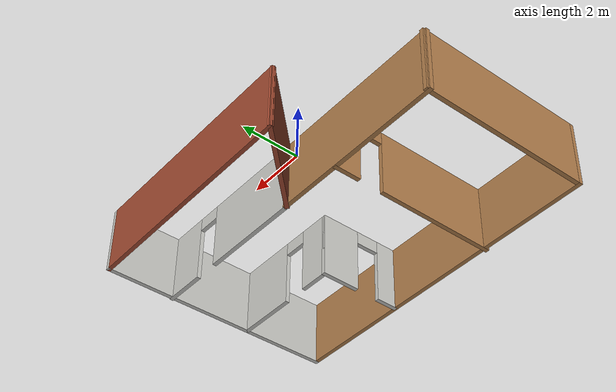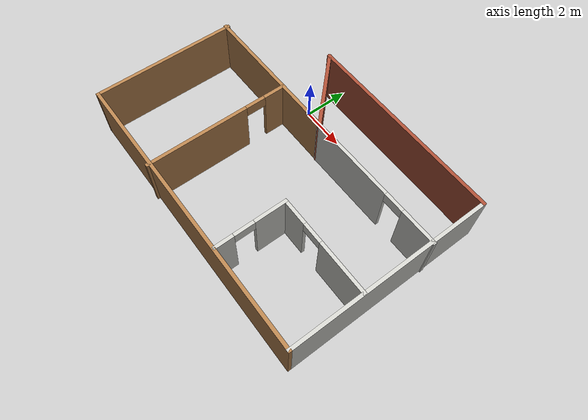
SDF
<?xml version='1.0'?>
<sdf version='1.6'>
  <model name='simple_house'>
    <pose frame=''>1.93521 -3.08543 0 0 -0 0</pose>
    <link name='Wall_1'>
      <collision name='Wall_1_Collision'>
        <geometry>
          <box>
            <size>6.75 0.15 2.5</size>
          </box>
        </geometry>
        <pose frame=''>0 0 1.25 0 -0 0</pose>
      </collision>
      <visual name='Wall_1_Visual'>
        <pose frame=''>0 0 1.25 0 -0 0</pose>
        <geometry>
          <box>
            <size>6.75 0.15 2.5</size>
          </box>
        </geometry>
        <material>
          <script>
            <uri>file://media/materials/scripts/gazebo.material</uri>
            <name>Gazebo/Wood</name>
          </script>
          <ambient>1 1 1 1</ambient>
        </material>
      </visual>
      <pose frame=''>-3.17521 1.89532 0 0 -0 0</pose>
    </link>
    <link name='Wall_12'>
      <pose frame=''>3.2998 1.89532 0 0 -0 0.006335</pose>
      <visual name='Wall_12_Visual_0'>
        <pose frame=''>-1.27364 0 1.25 0 -0 0</pose>
        <geometry>
          <box>
            <size>3.95272 0.15 2.5</size>
          </box>
        </geometry>
        <material>
          <script>
            <uri>file://media/materials/scripts/gazebo.material</uri>
            <name>Gazebo/CeilingTiled</name>
          </script>
          <ambient>1 1 1 1</ambient>
        </material>
      </visual>
      <collision name='Wall_12_Collision_0'>
        <geometry>
          <box>
            <size>3.95272 0.15 2.5</size>
          </box>
        </geometry>
        <pose frame=''>-1.27364 0 1.25 0 -0 0</pose>
      </collision>
      <visual name='Wall_12_Visual_1'>
        <pose frame=''>2.42636 0 1.25 0 -0 0</pose>
        <geometry>
          <box>
            <size>1.64728 0.15 2.5</size>
          </box>
        </geometry>
        <material>
          <script>
            <uri>file://media/materials/scripts/gazebo.material</uri>
            <name>Gazebo/CeilingTiled</name>
          </script>
          <ambient>1 1 1 1</ambient>
        </material>
      </visual>
      <collision name='Wall_12_Collision_1'>
        <geometry>
          <box>
            <size>1.64728 0.15 2.5</size>
          </box>
        </geometry>
        <pose frame=''>2.42636 0 1.25 0 -0 0</pose>
      </collision>
      <visual name='Wall_12_Visual_2'>
        <pose frame=''>1.15272 0 2.25 0 -0 0</pose>
        <geometry>
          <box>
            <size>0.9 0.15 0.5</size>
          </box>
        </geometry>
        <material>
          <script>
            <uri>file://media/materials/scripts/gazebo.material</uri>
            <name>Gazebo/CeilingTiled</name>
          </script>
          <ambient>1 1 1 1</ambient>
        </material>
      </visual>
      <collision name='Wall_12_Collision_2'>
        <geometry>
          <box>
            <size>0.9 0.15 0.5</size>
          </box>
        </geometry>
        <pose frame=''>1.15272 0 2.25 0 -0 0</pose>
      </collision>
    </link>
    <link name='Wall_15'>
      <pose frame=''>-2.28556 -1.31708 0 0 0 -1.5708</pose>
      <visual name='Wall_15_Visual_0'>
        <pose frame=''>-2.75364 0 1.25 0 -0 0</pose>
        <geometry>
          <box>
            <size>0.992723 0.15 2.5</size>
          </box>
        </geometry>
        <material>
          <script>
            <uri>file://media/materials/scripts/gazebo.material</uri>
            <name>Gazebo/Wood</name>
          </script>
          <ambient>1 1 1 1</ambient>
        </material>
      </visual>
      <collision name='Wall_15_Collision_0'>
        <geometry>
          <box>
            <size>0.992723 0.15 2.5</size>
          </box>
        </geometry>
        <pose frame=''>-2.75364 0 1.25 0 -0 0</pose>
      </collision>
      <visual name='Wall_15_Visual_1'>
        <pose frame=''>0.946361 0 1.25 0 -0 0</pose>
        <geometry>
          <box>
            <size>4.60728 0.15 2.5</size>
          </box>
        </geometry>
        <material>
          <script>
            <uri>file://media/materials/scripts/gazebo.material</uri>
            <name>Gazebo/Wood</name>
          </script>
          <ambient>1 1 1 1</ambient>
        </material>
      </visual>
      <collision name='Wall_15_Collision_1'>
        <geometry>
          <box>
            <size>4.60728 0.15 2.5</size>
          </box>
        </geometry>
        <pose frame=''>0.946361 0 1.25 0 -0 0</pose>
      </collision>
      <visual name='Wall_15_Visual_2'>
        <pose frame=''>-1.80728 0 2.25 0 -0 0</pose>
        <geometry>
          <box>
            <size>0.9 0.15 0.5</size>
          </box>
        </geometry>
        <material>
          <script>
            <uri>file://media/materials/scripts/gazebo.material</uri>
            <name>Gazebo/Wood</name>
          </script>
          <ambient>1 1 1 1</ambient>
        </material>
      </visual>
      <collision name='Wall_15_Collision_2'>
        <geometry>
          <box>
            <size>0.9 0.15 0.5</size>
          </box>
        </geometry>
        <pose frame=''>-1.80728 0 2.25 0 -0 0</pose>
      </collision>
    </link>
    <link name='Wall_17'>
      <pose frame=''>2.05897 -2.78706 0 0 -0 1.5708</pose>
      <visual name='Wall_17_Visual_0'>
        <pose frame=''>-1.18898 0 1.25 0 -0 0</pose>
        <geometry>
          <box>
            <size>0.872042 0.15 2.5</size>
          </box>
        </geometry>
        <material>
          <script>
            <uri>file://media/materials/scripts/gazebo.material</uri>
            <name>Gazebo/CeilingTiled</name>
          </script>
          <ambient>1 1 1 1</ambient>
        </material>
      </visual>
      <collision name='Wall_17_Collision_0'>
        <geometry>
          <box>
            <size>0.872042 0.15 2.5</size>
          </box>
        </geometry>
        <pose frame=''>-1.18898 0 1.25 0 -0 0</pose>
      </collision>
      <visual name='Wall_17_Visual_1'>
        <pose frame=''>0.886021 0 1.25 0 -0 0</pose>
        <geometry>
          <box>
            <size>1.47796 0.15 2.5</size>
          </box>
        </geometry>
        <material>
          <script>
            <uri>file://media/materials/scripts/gazebo.material</uri>
            <name>Gazebo/CeilingTiled</name>
          </script>
          <ambient>1 1 1 1</ambient>
        </material>
      </visual>
      <collision name='Wall_17_Collision_1'>
        <geometry>
          <box>
            <size>1.47796 0.15 2.5</size>
          </box>
        </geometry>
        <pose frame=''>0.886021 0 1.25 0 -0 0</pose>
      </collision>
      <visual name='Wall_17_Visual_2'>
        <pose frame=''>-0.302958 0 2.25 0 -0 0</pose>
        <geometry>
          <box>
            <size>0.9 0.15 0.5</size>
          </box>
        </geometry>
        <material>
          <script>
            <uri>file://media/materials/scripts/gazebo.material</uri>
            <name>Gazebo/CeilingTiled</name>
          </script>
          <ambient>1 1 1 1</ambient>
        </material>
      </visual>
      <collision name='Wall_17_Collision_2'>
        <geometry>
          <box>
            <size>0.9 0.15 0.5</size>
          </box>
        </geometry>
        <pose frame=''>-0.302958 0 2.25 0 -0 0</pose>
      </collision>
    </link>
    <link name='Wall_18'>
      <pose frame=''>4.23397 -1.23706 0 0 -0 0</pose>
      <visual name='Wall_18_Visual_0'>
        <pose frame=''>-1.64301 0 1.25 0 -0 0</pose>
        <geometry>
          <box>
            <size>1.21397 0.15 2.5</size>
          </box>
        </geometry>
        <material>
          <script>
            <uri>file://media/materials/scripts/gazebo.material</uri>
            <name>Gazebo/CeilingTiled</name>
          </script>
          <ambient>1 1 1 1</ambient>
        </material>
      </visual>
      <collision name='Wall_18_Collision_0'>
        <geometry>
          <box>
            <size>1.21397 0.15 2.5</size>
          </box>
        </geometry>
        <pose frame=''>-1.64301 0 1.25 0 -0 0</pose>
      </collision>
      <visual name='Wall_18_Visual_1'>
        <pose frame=''>1.05699 0 1.25 0 -0 0</pose>
        <geometry>
          <box>
            <size>2.38603 0.15 2.5</size>
          </box>
        </geometry>
        <material>
          <script>
            <uri>file://media/materials/scripts/gazebo.material</uri>
            <name>Gazebo/CeilingTiled</name>
          </script>
          <ambient>1 1 1 1</ambient>
        </material>
      </visual>
      <collision name='Wall_18_Collision_1'>
        <geometry>
          <box>
            <size>2.38603 0.15 2.5</size>
          </box>
        </geometry>
        <pose frame=''>1.05699 0 1.25 0 -0 0</pose>
      </collision>
      <visual name='Wall_18_Visual_2'>
        <pose frame=''>-0.586028 0 2.25 0 -0 0</pose>
        <geometry>
          <box>
            <size>0.9 0.15 0.5</size>
          </box>
        </geometry>
        <material>
          <script>
            <uri>file://media/materials/scripts/gazebo.material</uri>
            <name>Gazebo/CeilingTiled</name>
          </script>
          <ambient>1 1 1 1</ambient>
        </material>
      </visual>
      <collision name='Wall_18_Collision_2'>
        <geometry>
          <box>
            <size>0.9 0.15 0.5</size>
          </box>
        </geometry>
        <pose frame=''>-0.586028 0 2.25 0 -0 0</pose>
      </collision>
    </link>
    <link name='Wall_2'>
      <collision name='Wall_2_Collision'>
        <geometry>
          <box>
            <size>3.77856 0.15 2.5</size>
          </box>
        </geometry>
        <pose frame=''>0 0 1.25 0 -0 0</pose>
      </collision>
      <visual name='Wall_2_Visual'>
        <pose frame=''>0 0 1.25 0 -0 0</pose>
        <geometry>
          <box>
            <size>3.77856 0.15 2.5</size>
          </box>
        </geometry>
        <material>
          <script>
            <uri>file://media/materials/scripts/gazebo.material</uri>
            <name>Gazebo/Bricks</name>
          </script>
          <ambient>1 1 1 1</ambient>
        </material>
      </visual>
      <pose frame=''>-1.148 3.16811 0 0 -0 2.34836</pose>
    </link>
    <link name='Wall_3'>
      <collision name='Wall_3_Collision'>
        <geometry>
          <box>
            <size>9 0.15 2.5</size>
          </box>
        </geometry>
        <pose frame=''>0 0 1.25 0 -0 0</pose>
      </collision>
      <visual name='Wall_3_Visual'>
        <pose frame=''>0 0 1.25 0 -0 0</pose>
        <geometry>
          <box>
            <size>9 0.15 2.5</size>
          </box>
        </geometry>
        <material>
          <script>
            <uri>file://media/materials/scripts/gazebo.material</uri>
            <name>Gazebo/Bricks</name>
          </script>
          <ambient>1 1 1 1</ambient>
        </material>
      </visual>
      <pose frame=''>2.00421 4.46101 0 0 -0 0</pose>
    </link>
    <link name='Wall_4'>
      <collision name='Wall_4_Collision'>
        <geometry>
          <box>
            <size>9 0.15 2.5</size>
          </box>
        </geometry>
        <pose frame=''>0 0 1.25 0 -0 0</pose>
      </collision>
      <visual name='Wall_4_Visual'>
        <pose frame=''>0 0 1.25 0 -0 0</pose>
        <geometry>
          <box>
            <size>9 0.15 2.5</size>
          </box>
        </geometry>
        <material>
          <script>
            <uri>file://media/materials/scripts/gazebo.material</uri>
            <name>Gazebo/CeilingTiled</name>
          </script>
          <ambient>1 1 1 1</ambient>
        </material>
      </visual>
      <pose frame=''>6.42921 0.036014 0 0 0 -1.5708</pose>
    </link>
    <link name='Wall_5'>
      <collision name='Wall_5_Collision'>
        <geometry>
          <box>
            <size>13 0.15 2.5</size>
          </box>
        </geometry>
        <pose frame=''>0 0 1.25 0 -0 0</pose>
      </collision>
      <visual name='Wall_5_Visual'>
        <pose frame=''>0 0 1.25 0 -0 0</pose>
        <geometry>
          <box>
            <size>13 0.15 2.5</size>
          </box>
        </geometry>
        <material>
          <script>
            <uri>file://media/materials/scripts/gazebo.material</uri>
            <name>Gazebo/Wood</name>
          </script>
          <ambient>1 1 1 1</ambient>
        </material>
      </visual>
      <pose frame=''>0.004211 -4.38899 0 0 -0 3.14159</pose>
    </link>
    <link name='Wall_6'>
      <collision name='Wall_6_Collision'>
        <geometry>
          <box>
            <size>6.5 0.15 2.5</size>
          </box>
        </geometry>
        <pose frame=''>0 0 1.25 0 -0 0</pose>
      </collision>
      <visual name='Wall_6_Visual'>
        <pose frame=''>0 0 1.25 0 -0 0</pose>
        <geometry>
          <box>
            <size>6.5 0.15 2.5</size>
          </box>
        </geometry>
        <material>
          <script>
            <uri>file://media/materials/scripts/gazebo.material</uri>
            <name>Gazebo/Wood</name>
          </script>
          <ambient>1 1 1 1</ambient>
        </material>
      </visual>
      <pose frame=''>-6.42079 -1.21399 0 0 -0 1.5708</pose>
    </link>
    <static>1</static>
  </model>
</sdf>
